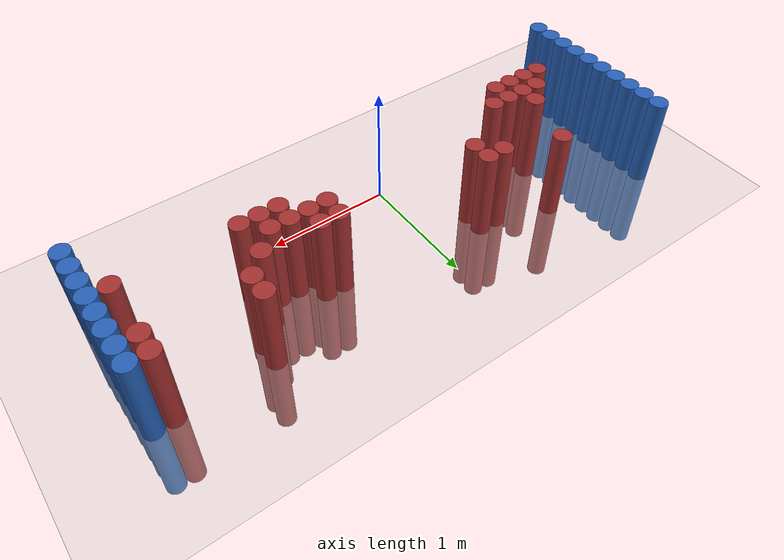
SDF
<sdf version="1.6">
 <world name="default">
  <model name="ground_plane">
   <static>1</static>
   <link name="link">
    <collision name="collision">
     <geometry><plane><normal>0 0 1</normal><size>100 100</size></plane></geometry>
     <surface><friction><ode><mu>100</mu><mu2>50</mu2></ode></friction></surface>
    </collision>
    <visual name="visual">
     <cast_shadows>0</cast_shadows>
     <geometry><plane><normal>0 0 1</normal><size>100 100</size></plane></geometry>
     <material>
      <script><uri>file://media/materials/scripts/gazebo.material</uri><name>Gazebo/Grey</name></script>
     </material>
    </visual>
   </link>
  </model>
  <model name="unit_cylinder_91">
   <static>1</static>
   <pose>-1.925000 -0.275000 0.000000 0.000000 0.000000 0.000000</pose>
   <link name="link">
    <inertial>
     <mass>1</mass>
     <inertia><ixx>0.145833</ixx><ixy>0</ixy><ixz>0</ixz><iyy>0.145833</iyy><iyz>0</iyz><izz>0.125</izz></inertia>
    </inertial>
    <collision name="collision">
     <geometry><cylinder><radius>0.075000</radius><length>1.5</length></cylinder></geometry>
    </collision>
    <visual name="visual">
     <geometry><cylinder><radius>0.075000</radius><length>1.5</length></cylinder></geometry>
     <material>
      <ambient>0.152000 0.379000 0.720000 1</ambient>
      <diffuse>0.152000 0.379000 0.720000 1</diffuse>
     </material>
     <material>
      <script><name>Gazebo/Grey</name><uri>file://media/materials/scripts/gazebo.material</uri></script>
     </material>
    </visual>
   </link>
  </model>
  <model name="unit_cylinder_92">
   <static>1</static>
   <pose>2.425000 -0.125000 0.000000 0.000000 0.000000 0.000000</pose>
   <link name="link">
    <inertial>
     <mass>1</mass>
     <inertia><ixx>0.145833</ixx><ixy>0</ixy><ixz>0</ixz><iyy>0.145833</iyy><iyz>0</iyz><izz>0.125</izz></inertia>
    </inertial>
    <collision name="collision">
     <geometry><cylinder><radius>0.075000</radius><length>1.5</length></cylinder></geometry>
    </collision>
    <visual name="visual">
     <geometry><cylinder><radius>0.075000</radius><length>1.5</length></cylinder></geometry>
     <material>
      <ambient>0.152000 0.379000 0.720000 1</ambient>
      <diffuse>0.152000 0.379000 0.720000 1</diffuse>
     </material>
     <material>
      <script><name>Gazebo/Grey</name><uri>file://media/materials/scripts/gazebo.material</uri></script>
     </material>
    </visual>
   </link>
  </model>
  <model name="unit_cylinder_93">
   <static>1</static>
   <pose>-1.925000 -0.125000 0.000000 0.000000 0.000000 0.000000</pose>
   <link name="link">
    <inertial>
     <mass>1</mass>
     <inertia><ixx>0.145833</ixx><ixy>0</ixy><ixz>0</ixz><iyy>0.145833</iyy><iyz>0</iyz><izz>0.125</izz></inertia>
    </inertial>
    <collision name="collision">
     <geometry><cylinder><radius>0.075000</radius><length>1.5</length></cylinder></geometry>
    </collision>
    <visual name="visual">
     <geometry><cylinder><radius>0.075000</radius><length>1.5</length></cylinder></geometry>
     <material>
      <ambient>0.152000 0.379000 0.720000 1</ambient>
      <diffuse>0.152000 0.379000 0.720000 1</diffuse>
     </material>
     <material>
      <script><name>Gazebo/Grey</name><uri>file://media/materials/scripts/gazebo.material</uri></script>
     </material>
    </visual>
   </link>
  </model>
  <model name="unit_cylinder_94">
   <static>1</static>
   <pose>2.425000 0.025000 0.000000 0.000000 0.000000 0.000000</pose>
   <link name="link">
    <inertial>
     <mass>1</mass>
     <inertia><ixx>0.145833</ixx><ixy>0</ixy><ixz>0</ixz><iyy>0.145833</iyy><iyz>0</iyz><izz>0.125</izz></inertia>
    </inertial>
    <collision name="collision">
     <geometry><cylinder><radius>0.075000</radius><length>1.5</length></cylinder></geometry>
    </collision>
    <visual name="visual">
     <geometry><cylinder><radius>0.075000</radius><length>1.5</length></cylinder></geometry>
     <material>
      <ambient>0.152000 0.379000 0.720000 1</ambient>
      <diffuse>0.152000 0.379000 0.720000 1</diffuse>
     </material>
     <material>
      <script><name>Gazebo/Grey</name><uri>file://media/materials/scripts/gazebo.material</uri></script>
     </material>
    </visual>
   </link>
  </model>
  <model name="unit_cylinder_95">
   <static>1</static>
   <pose>-1.925000 0.025000 0.000000 0.000000 0.000000 0.000000</pose>
   <link name="link">
    <inertial>
     <mass>1</mass>
     <inertia><ixx>0.145833</ixx><ixy>0</ixy><ixz>0</ixz><iyy>0.145833</iyy><iyz>0</iyz><izz>0.125</izz></inertia>
    </inertial>
    <collision name="collision">
     <geometry><cylinder><radius>0.075000</radius><length>1.5</length></cylinder></geometry>
    </collision>
    <visual name="visual">
     <geometry><cylinder><radius>0.075000</radius><length>1.5</length></cylinder></geometry>
     <material>
      <ambient>0.152000 0.379000 0.720000 1</ambient>
      <diffuse>0.152000 0.379000 0.720000 1</diffuse>
     </material>
     <material>
      <script><name>Gazebo/Grey</name><uri>file://media/materials/scripts/gazebo.material</uri></script>
     </material>
    </visual>
   </link>
  </model>
  <model name="unit_cylinder_96">
   <static>1</static>
   <pose>-1.925000 0.175000 0.000000 0.000000 0.000000 0.000000</pose>
   <link name="link">
    <inertial>
     <mass>1</mass>
     <inertia><ixx>0.145833</ixx><ixy>0</ixy><ixz>0</ixz><iyy>0.145833</iyy><iyz>0</iyz><izz>0.125</izz></inertia>
    </inertial>
    <collision name="collision">
     <geometry><cylinder><radius>0.075000</radius><length>1.5</length></cylinder></geometry>
    </collision>
    <visual name="visual">
     <geometry><cylinder><radius>0.075000</radius><length>1.5</length></cylinder></geometry>
     <material>
      <ambient>0.152000 0.379000 0.720000 1</ambient>
      <diffuse>0.152000 0.379000 0.720000 1</diffuse>
     </material>
     <material>
      <script><name>Gazebo/Grey</name><uri>file://media/materials/scripts/gazebo.material</uri></script>
     </material>
    </visual>
   </link>
  </model>
  <model name="unit_cylinder_97">
   <static>1</static>
   <pose>-1.925000 0.325000 0.000000 0.000000 0.000000 0.000000</pose>
   <link name="link">
    <inertial>
     <mass>1</mass>
     <inertia><ixx>0.145833</ixx><ixy>0</ixy><ixz>0</ixz><iyy>0.145833</iyy><iyz>0</iyz><izz>0.125</izz></inertia>
    </inertial>
    <collision name="collision">
     <geometry><cylinder><radius>0.075000</radius><length>1.5</length></cylinder></geometry>
    </collision>
    <visual name="visual">
     <geometry><cylinder><radius>0.075000</radius><length>1.5</length></cylinder></geometry>
     <material>
      <ambient>0.152000 0.379000 0.720000 1</ambient>
      <diffuse>0.152000 0.379000 0.720000 1</diffuse>
     </material>
     <material>
      <script><name>Gazebo/Grey</name><uri>file://media/materials/scripts/gazebo.material</uri></script>
     </material>
    </visual>
   </link>
  </model>
  <model name="unit_cylinder_98">
   <static>1</static>
   <pose>-1.925000 0.475000 0.000000 0.000000 0.000000 0.000000</pose>
   <link name="link">
    <inertial>
     <mass>1</mass>
     <inertia><ixx>0.145833</ixx><ixy>0</ixy><ixz>0</ixz><iyy>0.145833</iyy><iyz>0</iyz><izz>0.125</izz></inertia>
    </inertial>
    <collision name="collision">
     <geometry><cylinder><radius>0.075000</radius><length>1.5</length></cylinder></geometry>
    </collision>
    <visual name="visual">
     <geometry><cylinder><radius>0.075000</radius><length>1.5</length></cylinder></geometry>
     <material>
      <ambient>0.152000 0.379000 0.720000 1</ambient>
      <diffuse>0.152000 0.379000 0.720000 1</diffuse>
     </material>
     <material>
      <script><name>Gazebo/Grey</name><uri>file://media/materials/scripts/gazebo.material</uri></script>
     </material>
    </visual>
   </link>
  </model>
  <model name="unit_cylinder_99">
   <static>1</static>
   <pose>-1.925000 0.625000 0.000000 0.000000 0.000000 0.000000</pose>
   <link name="link">
    <inertial>
     <mass>1</mass>
     <inertia><ixx>0.145833</ixx><ixy>0</ixy><ixz>0</ixz><iyy>0.145833</iyy><iyz>0</iyz><izz>0.125</izz></inertia>
    </inertial>
    <collision name="collision">
     <geometry><cylinder><radius>0.075000</radius><length>1.5</length></cylinder></geometry>
    </collision>
    <visual name="visual">
     <geometry><cylinder><radius>0.075000</radius><length>1.5</length></cylinder></geometry>
     <material>
      <ambient>0.152000 0.379000 0.720000 1</ambient>
      <diffuse>0.152000 0.379000 0.720000 1</diffuse>
     </material>
     <material>
      <script><name>Gazebo/Grey</name><uri>file://media/materials/scripts/gazebo.material</uri></script>
     </material>
    </visual>
   </link>
  </model>
  <model name="unit_cylinder_100">
   <static>1</static>
   <pose>-1.925000 0.775000 0.000000 0.000000 0.000000 0.000000</pose>
   <link name="link">
    <inertial>
     <mass>1</mass>
     <inertia><ixx>0.145833</ixx><ixy>0</ixy><ixz>0</ixz><iyy>0.145833</iyy><iyz>0</iyz><izz>0.125</izz></inertia>
    </inertial>
    <collision name="collision">
     <geometry><cylinder><radius>0.075000</radius><length>1.5</length></cylinder></geometry>
    </collision>
    <visual name="visual">
     <geometry><cylinder><radius>0.075000</radius><length>1.5</length></cylinder></geometry>
     <material>
      <ambient>0.152000 0.379000 0.720000 1</ambient>
      <diffuse>0.152000 0.379000 0.720000 1</diffuse>
     </material>
     <material>
      <script><name>Gazebo/Grey</name><uri>file://media/materials/scripts/gazebo.material</uri></script>
     </material>
    </visual>
   </link>
  </model>
  <model name="unit_cylinder_101">
   <static>1</static>
   <pose>-1.925000 0.925000 0.000000 0.000000 0.000000 0.000000</pose>
   <link name="link">
    <inertial>
     <mass>1</mass>
     <inertia><ixx>0.145833</ixx><ixy>0</ixy><ixz>0</ixz><iyy>0.145833</iyy><iyz>0</iyz><izz>0.125</izz></inertia>
    </inertial>
    <collision name="collision">
     <geometry><cylinder><radius>0.075000</radius><length>1.5</length></cylinder></geometry>
    </collision>
    <visual name="visual">
     <geometry><cylinder><radius>0.075000</radius><length>1.5</length></cylinder></geometry>
     <material>
      <ambient>0.152000 0.379000 0.720000 1</ambient>
      <diffuse>0.152000 0.379000 0.720000 1</diffuse>
     </material>
     <material>
      <script><name>Gazebo/Grey</name><uri>file://media/materials/scripts/gazebo.material</uri></script>
     </material>
    </visual>
   </link>
  </model>
  <model name="unit_cylinder_102">
   <static>1</static>
   <pose>-1.925000 1.075000 0.000000 0.000000 0.000000 0.000000</pose>
   <link name="link">
    <inertial>
     <mass>1</mass>
     <inertia><ixx>0.145833</ixx><ixy>0</ixy><ixz>0</ixz><iyy>0.145833</iyy><iyz>0</iyz><izz>0.125</izz></inertia>
    </inertial>
    <collision name="collision">
     <geometry><cylinder><radius>0.075000</radius><length>1.5</length></cylinder></geometry>
    </collision>
    <visual name="visual">
     <geometry><cylinder><radius>0.075000</radius><length>1.5</length></cylinder></geometry>
     <material>
      <ambient>0.152000 0.379000 0.720000 1</ambient>
      <diffuse>0.152000 0.379000 0.720000 1</diffuse>
     </material>
     <material>
      <script><name>Gazebo/Grey</name><uri>file://media/materials/scripts/gazebo.material</uri></script>
     </material>
    </visual>
   </link>
  </model>
  <model name="unit_cylinder_139">
   <static>1</static>
   <pose>-1.475000 0.175000 0.000000 0.000000 0.000000 0.000000</pose>
   <link name="link">
    <inertial>
     <mass>1</mass>
     <inertia><ixx>0.145833</ixx><ixy>0</ixy><ixz>0</ixz><iyy>0.145833</iyy><iyz>0</iyz><izz>0.125</izz></inertia>
    </inertial>
    <collision name="collision">
     <geometry><cylinder><radius>0.075000</radius><length>1.5</length></cylinder></geometry>
    </collision>
    <visual name="visual">
     <geometry><cylinder><radius>0.075000</radius><length>1.5</length></cylinder></geometry>
     <material>
      <ambient>0.648000 0.192000 0.192000 1</ambient>
      <diffuse>0.648000 0.192000 0.192000 1</diffuse>
     </material>
     <material>
      <script><name>Gazebo/Grey</name><uri>file://media/materials/scripts/gazebo.material</uri></script>
     </material>
    </visual>
   </link>
  </model>
  <model name="unit_cylinder_142">
   <static>1</static>
   <pose>-1.325000 0.175000 0.000000 0.000000 0.000000 0.000000</pose>
   <link name="link">
    <inertial>
     <mass>1</mass>
     <inertia><ixx>0.145833</ixx><ixy>0</ixy><ixz>0</ixz><iyy>0.145833</iyy><iyz>0</iyz><izz>0.125</izz></inertia>
    </inertial>
    <collision name="collision">
     <geometry><cylinder><radius>0.075000</radius><length>1.5</length></cylinder></geometry>
    </collision>
    <visual name="visual">
     <geometry><cylinder><radius>0.075000</radius><length>1.5</length></cylinder></geometry>
     <material>
      <ambient>0.648000 0.192000 0.192000 1</ambient>
      <diffuse>0.648000 0.192000 0.192000 1</diffuse>
     </material>
     <material>
      <script><name>Gazebo/Grey</name><uri>file://media/materials/scripts/gazebo.material</uri></script>
     </material>
    </visual>
   </link>
  </model>
  <model name="unit_cylinder_143">
   <static>1</static>
   <pose>-1.325000 0.325000 0.000000 0.000000 0.000000 0.000000</pose>
   <link name="link">
    <inertial>
     <mass>1</mass>
     <inertia><ixx>0.145833</ixx><ixy>0</ixy><ixz>0</ixz><iyy>0.145833</iyy><iyz>0</iyz><izz>0.125</izz></inertia>
    </inertial>
    <collision name="collision">
     <geometry><cylinder><radius>0.075000</radius><length>1.5</length></cylinder></geometry>
    </collision>
    <visual name="visual">
     <geometry><cylinder><radius>0.075000</radius><length>1.5</length></cylinder></geometry>
     <material>
      <ambient>0.648000 0.192000 0.192000 1</ambient>
      <diffuse>0.648000 0.192000 0.192000 1</diffuse>
     </material>
     <material>
      <script><name>Gazebo/Grey</name><uri>file://media/materials/scripts/gazebo.material</uri></script>
     </material>
    </visual>
   </link>
  </model>
  <model name="unit_cylinder_146">
   <static>1</static>
   <pose>-1.175000 0.175000 0.000000 0.000000 0.000000 0.000000</pose>
   <link name="link">
    <inertial>
     <mass>1</mass>
     <inertia><ixx>0.145833</ixx><ixy>0</ixy><ixz>0</ixz><iyy>0.145833</iyy><iyz>0</iyz><izz>0.125</izz></inertia>
    </inertial>
    <collision name="collision">
     <geometry><cylinder><radius>0.075000</radius><length>1.5</length></cylinder></geometry>
    </collision>
    <visual name="visual">
     <geometry><cylinder><radius>0.075000</radius><length>1.5</length></cylinder></geometry>
     <material>
      <ambient>0.648000 0.192000 0.192000 1</ambient>
      <diffuse>0.648000 0.192000 0.192000 1</diffuse>
     </material>
     <material>
      <script><name>Gazebo/Grey</name><uri>file://media/materials/scripts/gazebo.material</uri></script>
     </material>
    </visual>
   </link>
  </model>
  <model name="unit_cylinder_147">
   <static>1</static>
   <pose>-1.175000 0.325000 0.000000 0.000000 0.000000 0.000000</pose>
   <link name="link">
    <inertial>
     <mass>1</mass>
     <inertia><ixx>0.145833</ixx><ixy>0</ixy><ixz>0</ixz><iyy>0.145833</iyy><iyz>0</iyz><izz>0.125</izz></inertia>
    </inertial>
    <collision name="collision">
     <geometry><cylinder><radius>0.075000</radius><length>1.5</length></cylinder></geometry>
    </collision>
    <visual name="visual">
     <geometry><cylinder><radius>0.075000</radius><length>1.5</length></cylinder></geometry>
     <material>
      <ambient>0.648000 0.192000 0.192000 1</ambient>
      <diffuse>0.648000 0.192000 0.192000 1</diffuse>
     </material>
     <material>
      <script><name>Gazebo/Grey</name><uri>file://media/materials/scripts/gazebo.material</uri></script>
     </material>
    </visual>
   </link>
  </model>
  <model name="unit_cylinder_148">
   <static>1</static>
   <pose>-1.175000 0.475000 0.000000 0.000000 0.000000 0.000000</pose>
   <link name="link">
    <inertial>
     <mass>1</mass>
     <inertia><ixx>0.145833</ixx><ixy>0</ixy><ixz>0</ixz><iyy>0.145833</iyy><iyz>0</iyz><izz>0.125</izz></inertia>
    </inertial>
    <collision name="collision">
     <geometry><cylinder><radius>0.075000</radius><length>1.5</length></cylinder></geometry>
    </collision>
    <visual name="visual">
     <geometry><cylinder><radius>0.075000</radius><length>1.5</length></cylinder></geometry>
     <material>
      <ambient>0.648000 0.192000 0.192000 1</ambient>
      <diffuse>0.648000 0.192000 0.192000 1</diffuse>
     </material>
     <material>
      <script><name>Gazebo/Grey</name><uri>file://media/materials/scripts/gazebo.material</uri></script>
     </material>
    </visual>
   </link>
  </model>
  <model name="unit_cylinder_152">
   <static>1</static>
   <pose>-1.025000 0.175000 0.000000 0.000000 0.000000 0.000000</pose>
   <link name="link">
    <inertial>
     <mass>1</mass>
     <inertia><ixx>0.145833</ixx><ixy>0</ixy><ixz>0</ixz><iyy>0.145833</iyy><iyz>0</iyz><izz>0.125</izz></inertia>
    </inertial>
    <collision name="collision">
     <geometry><cylinder><radius>0.075000</radius><length>1.5</length></cylinder></geometry>
    </collision>
    <visual name="visual">
     <geometry><cylinder><radius>0.075000</radius><length>1.5</length></cylinder></geometry>
     <material>
      <ambient>0.648000 0.192000 0.192000 1</ambient>
      <diffuse>0.648000 0.192000 0.192000 1</diffuse>
     </material>
     <material>
      <script><name>Gazebo/Grey</name><uri>file://media/materials/scripts/gazebo.material</uri></script>
     </material>
    </visual>
   </link>
  </model>
  <model name="unit_cylinder_153">
   <static>1</static>
   <pose>-1.025000 0.325000 0.000000 0.000000 0.000000 0.000000</pose>
   <link name="link">
    <inertial>
     <mass>1</mass>
     <inertia><ixx>0.145833</ixx><ixy>0</ixy><ixz>0</ixz><iyy>0.145833</iyy><iyz>0</iyz><izz>0.125</izz></inertia>
    </inertial>
    <collision name="collision">
     <geometry><cylinder><radius>0.075000</radius><length>1.5</length></cylinder></geometry>
    </collision>
    <visual name="visual">
     <geometry><cylinder><radius>0.075000</radius><length>1.5</length></cylinder></geometry>
     <material>
      <ambient>0.648000 0.192000 0.192000 1</ambient>
      <diffuse>0.648000 0.192000 0.192000 1</diffuse>
     </material>
     <material>
      <script><name>Gazebo/Grey</name><uri>file://media/materials/scripts/gazebo.material</uri></script>
     </material>
    </visual>
   </link>
  </model>
  <model name="unit_cylinder_154">
   <static>1</static>
   <pose>-1.025000 0.925000 0.000000 0.000000 0.000000 0.000000</pose>
   <link name="link">
    <inertial>
     <mass>1</mass>
     <inertia><ixx>0.145833</ixx><ixy>0</ixy><ixz>0</ixz><iyy>0.145833</iyy><iyz>0</iyz><izz>0.125</izz></inertia>
    </inertial>
    <collision name="collision">
     <geometry><cylinder><radius>0.075000</radius><length>1.5</length></cylinder></geometry>
    </collision>
    <visual name="visual">
     <geometry><cylinder><radius>0.075000</radius><length>1.5</length></cylinder></geometry>
     <material>
      <ambient>0.648000 0.192000 0.192000 1</ambient>
      <diffuse>0.648000 0.192000 0.192000 1</diffuse>
     </material>
     <material>
      <script><name>Gazebo/Grey</name><uri>file://media/materials/scripts/gazebo.material</uri></script>
     </material>
    </visual>
   </link>
  </model>
  <model name="unit_cylinder_160">
   <static>1</static>
   <pose>-0.875000 0.325000 0.000000 0.000000 0.000000 0.000000</pose>
   <link name="link">
    <inertial>
     <mass>1</mass>
     <inertia><ixx>0.145833</ixx><ixy>0</ixy><ixz>0</ixz><iyy>0.145833</iyy><iyz>0</iyz><izz>0.125</izz></inertia>
    </inertial>
    <collision name="collision">
     <geometry><cylinder><radius>0.075000</radius><length>1.5</length></cylinder></geometry>
    </collision>
    <visual name="visual">
     <geometry><cylinder><radius>0.075000</radius><length>1.5</length></cylinder></geometry>
     <material>
      <ambient>0.648000 0.192000 0.192000 1</ambient>
      <diffuse>0.648000 0.192000 0.192000 1</diffuse>
     </material>
     <material>
      <script><name>Gazebo/Grey</name><uri>file://media/materials/scripts/gazebo.material</uri></script>
     </material>
    </visual>
   </link>
  </model>
  <model name="unit_cylinder_170">
   <static>1</static>
   <pose>-0.575000 0.775000 0.000000 0.000000 0.000000 0.000000</pose>
   <link name="link">
    <inertial>
     <mass>1</mass>
     <inertia><ixx>0.145833</ixx><ixy>0</ixy><ixz>0</ixz><iyy>0.145833</iyy><iyz>0</iyz><izz>0.125</izz></inertia>
    </inertial>
    <collision name="collision">
     <geometry><cylinder><radius>0.075000</radius><length>1.5</length></cylinder></geometry>
    </collision>
    <visual name="visual">
     <geometry><cylinder><radius>0.075000</radius><length>1.5</length></cylinder></geometry>
     <material>
      <ambient>0.648000 0.192000 0.192000 1</ambient>
      <diffuse>0.648000 0.192000 0.192000 1</diffuse>
     </material>
     <material>
      <script><name>Gazebo/Grey</name><uri>file://media/materials/scripts/gazebo.material</uri></script>
     </material>
    </visual>
   </link>
  </model>
  <model name="unit_cylinder_173">
   <static>1</static>
   <pose>-0.425000 0.625000 0.000000 0.000000 0.000000 0.000000</pose>
   <link name="link">
    <inertial>
     <mass>1</mass>
     <inertia><ixx>0.145833</ixx><ixy>0</ixy><ixz>0</ixz><iyy>0.145833</iyy><iyz>0</iyz><izz>0.125</izz></inertia>
    </inertial>
    <collision name="collision">
     <geometry><cylinder><radius>0.075000</radius><length>1.5</length></cylinder></geometry>
    </collision>
    <visual name="visual">
     <geometry><cylinder><radius>0.075000</radius><length>1.5</length></cylinder></geometry>
     <material>
      <ambient>0.648000 0.192000 0.192000 1</ambient>
      <diffuse>0.648000 0.192000 0.192000 1</diffuse>
     </material>
     <material>
      <script><name>Gazebo/Grey</name><uri>file://media/materials/scripts/gazebo.material</uri></script>
     </material>
    </visual>
   </link>
  </model>
  <model name="unit_cylinder_174">
   <static>1</static>
   <pose>-0.425000 0.775000 0.000000 0.000000 0.000000 0.000000</pose>
   <link name="link">
    <inertial>
     <mass>1</mass>
     <inertia><ixx>0.145833</ixx><ixy>0</ixy><ixz>0</ixz><iyy>0.145833</iyy><iyz>0</iyz><izz>0.125</izz></inertia>
    </inertial>
    <collision name="collision">
     <geometry><cylinder><radius>0.075000</radius><length>1.5</length></cylinder></geometry>
    </collision>
    <visual name="visual">
     <geometry><cylinder><radius>0.075000</radius><length>1.5</length></cylinder></geometry>
     <material>
      <ambient>0.648000 0.192000 0.192000 1</ambient>
      <diffuse>0.648000 0.192000 0.192000 1</diffuse>
     </material>
     <material>
      <script><name>Gazebo/Grey</name><uri>file://media/materials/scripts/gazebo.material</uri></script>
     </material>
    </visual>
   </link>
  </model>
  <model name="unit_cylinder_182">
   <static>1</static>
   <pose>0.775000 0.475000 0.000000 0.000000 0.000000 0.000000</pose>
   <link name="link">
    <inertial>
     <mass>1</mass>
     <inertia><ixx>0.145833</ixx><ixy>0</ixy><ixz>0</ixz><iyy>0.145833</iyy><iyz>0</iyz><izz>0.125</izz></inertia>
    </inertial>
    <collision name="collision">
     <geometry><cylinder><radius>0.075000</radius><length>1.5</length></cylinder></geometry>
    </collision>
    <visual name="visual">
     <geometry><cylinder><radius>0.075000</radius><length>1.5</length></cylinder></geometry>
     <material>
      <ambient>0.648000 0.192000 0.192000 1</ambient>
      <diffuse>0.648000 0.192000 0.192000 1</diffuse>
     </material>
     <material>
      <script><name>Gazebo/Grey</name><uri>file://media/materials/scripts/gazebo.material</uri></script>
     </material>
    </visual>
   </link>
  </model>
  <model name="unit_cylinder_183">
   <static>1</static>
   <pose>0.775000 0.625000 0.000000 0.000000 0.000000 0.000000</pose>
   <link name="link">
    <inertial>
     <mass>1</mass>
     <inertia><ixx>0.145833</ixx><ixy>0</ixy><ixz>0</ixz><iyy>0.145833</iyy><iyz>0</iyz><izz>0.125</izz></inertia>
    </inertial>
    <collision name="collision">
     <geometry><cylinder><radius>0.075000</radius><length>1.5</length></cylinder></geometry>
    </collision>
    <visual name="visual">
     <geometry><cylinder><radius>0.075000</radius><length>1.5</length></cylinder></geometry>
     <material>
      <ambient>0.648000 0.192000 0.192000 1</ambient>
      <diffuse>0.648000 0.192000 0.192000 1</diffuse>
     </material>
     <material>
      <script><name>Gazebo/Grey</name><uri>file://media/materials/scripts/gazebo.material</uri></script>
     </material>
    </visual>
   </link>
  </model>
  <model name="unit_cylinder_187">
   <static>1</static>
   <pose>0.925000 0.475000 0.000000 0.000000 0.000000 0.000000</pose>
   <link name="link">
    <inertial>
     <mass>1</mass>
     <inertia><ixx>0.145833</ixx><ixy>0</ixy><ixz>0</ixz><iyy>0.145833</iyy><iyz>0</iyz><izz>0.125</izz></inertia>
    </inertial>
    <collision name="collision">
     <geometry><cylinder><radius>0.075000</radius><length>1.5</length></cylinder></geometry>
    </collision>
    <visual name="visual">
     <geometry><cylinder><radius>0.075000</radius><length>1.5</length></cylinder></geometry>
     <material>
      <ambient>0.648000 0.192000 0.192000 1</ambient>
      <diffuse>0.648000 0.192000 0.192000 1</diffuse>
     </material>
     <material>
      <script><name>Gazebo/Grey</name><uri>file://media/materials/scripts/gazebo.material</uri></script>
     </material>
    </visual>
   </link>
  </model>
  <model name="unit_cylinder_188">
   <static>1</static>
   <pose>0.925000 0.625000 0.000000 0.000000 0.000000 0.000000</pose>
   <link name="link">
    <inertial>
     <mass>1</mass>
     <inertia><ixx>0.145833</ixx><ixy>0</ixy><ixz>0</ixz><iyy>0.145833</iyy><iyz>0</iyz><izz>0.125</izz></inertia>
    </inertial>
    <collision name="collision">
     <geometry><cylinder><radius>0.075000</radius><length>1.5</length></cylinder></geometry>
    </collision>
    <visual name="visual">
     <geometry><cylinder><radius>0.075000</radius><length>1.5</length></cylinder></geometry>
     <material>
      <ambient>0.648000 0.192000 0.192000 1</ambient>
      <diffuse>0.648000 0.192000 0.192000 1</diffuse>
     </material>
     <material>
      <script><name>Gazebo/Grey</name><uri>file://media/materials/scripts/gazebo.material</uri></script>
     </material>
    </visual>
   </link>
  </model>
  <model name="unit_cylinder_189">
   <static>1</static>
   <pose>1.075000 0.325000 0.000000 0.000000 0.000000 0.000000</pose>
   <link name="link">
    <inertial>
     <mass>1</mass>
     <inertia><ixx>0.145833</ixx><ixy>0</ixy><ixz>0</ixz><iyy>0.145833</iyy><iyz>0</iyz><izz>0.125</izz></inertia>
    </inertial>
    <collision name="collision">
     <geometry><cylinder><radius>0.075000</radius><length>1.5</length></cylinder></geometry>
    </collision>
    <visual name="visual">
     <geometry><cylinder><radius>0.075000</radius><length>1.5</length></cylinder></geometry>
     <material>
      <ambient>0.648000 0.192000 0.192000 1</ambient>
      <diffuse>0.648000 0.192000 0.192000 1</diffuse>
     </material>
     <material>
      <script><name>Gazebo/Grey</name><uri>file://media/materials/scripts/gazebo.material</uri></script>
     </material>
    </visual>
   </link>
  </model>
  <model name="unit_cylinder_190">
   <static>1</static>
   <pose>1.075000 0.475000 0.000000 0.000000 0.000000 0.000000</pose>
   <link name="link">
    <inertial>
     <mass>1</mass>
     <inertia><ixx>0.145833</ixx><ixy>0</ixy><ixz>0</ixz><iyy>0.145833</iyy><iyz>0</iyz><izz>0.125</izz></inertia>
    </inertial>
    <collision name="collision">
     <geometry><cylinder><radius>0.075000</radius><length>1.5</length></cylinder></geometry>
    </collision>
    <visual name="visual">
     <geometry><cylinder><radius>0.075000</radius><length>1.5</length></cylinder></geometry>
     <material>
      <ambient>0.648000 0.192000 0.192000 1</ambient>
      <diffuse>0.648000 0.192000 0.192000 1</diffuse>
     </material>
     <material>
      <script><name>Gazebo/Grey</name><uri>file://media/materials/scripts/gazebo.material</uri></script>
     </material>
    </visual>
   </link>
  </model>
  <model name="unit_cylinder_191">
   <static>1</static>
   <pose>1.225000 0.325000 0.000000 0.000000 0.000000 0.000000</pose>
   <link name="link">
    <inertial>
     <mass>1</mass>
     <inertia><ixx>0.145833</ixx><ixy>0</ixy><ixz>0</ixz><iyy>0.145833</iyy><iyz>0</iyz><izz>0.125</izz></inertia>
    </inertial>
    <collision name="collision">
     <geometry><cylinder><radius>0.075000</radius><length>1.5</length></cylinder></geometry>
    </collision>
    <visual name="visual">
     <geometry><cylinder><radius>0.075000</radius><length>1.5</length></cylinder></geometry>
     <material>
      <ambient>0.648000 0.192000 0.192000 1</ambient>
      <diffuse>0.648000 0.192000 0.192000 1</diffuse>
     </material>
     <material>
      <script><name>Gazebo/Grey</name><uri>file://media/materials/scripts/gazebo.material</uri></script>
     </material>
    </visual>
   </link>
  </model>
  <model name="unit_cylinder_192">
   <static>1</static>
   <pose>1.225000 0.475000 0.000000 0.000000 0.000000 0.000000</pose>
   <link name="link">
    <inertial>
     <mass>1</mass>
     <inertia><ixx>0.145833</ixx><ixy>0</ixy><ixz>0</ixz><iyy>0.145833</iyy><iyz>0</iyz><izz>0.125</izz></inertia>
    </inertial>
    <collision name="collision">
     <geometry><cylinder><radius>0.075000</radius><length>1.5</length></cylinder></geometry>
    </collision>
    <visual name="visual">
     <geometry><cylinder><radius>0.075000</radius><length>1.5</length></cylinder></geometry>
     <material>
      <ambient>0.648000 0.192000 0.192000 1</ambient>
      <diffuse>0.648000 0.192000 0.192000 1</diffuse>
     </material>
     <material>
      <script><name>Gazebo/Grey</name><uri>file://media/materials/scripts/gazebo.material</uri></script>
     </material>
    </visual>
   </link>
  </model>
  <model name="unit_cylinder_195">
   <static>1</static>
   <pose>1.375000 0.325000 0.000000 0.000000 0.000000 0.000000</pose>
   <link name="link">
    <inertial>
     <mass>1</mass>
     <inertia><ixx>0.145833</ixx><ixy>0</ixy><ixz>0</ixz><iyy>0.145833</iyy><iyz>0</iyz><izz>0.125</izz></inertia>
    </inertial>
    <collision name="collision">
     <geometry><cylinder><radius>0.075000</radius><length>1.5</length></cylinder></geometry>
    </collision>
    <visual name="visual">
     <geometry><cylinder><radius>0.075000</radius><length>1.5</length></cylinder></geometry>
     <material>
      <ambient>0.648000 0.192000 0.192000 1</ambient>
      <diffuse>0.648000 0.192000 0.192000 1</diffuse>
     </material>
     <material>
      <script><name>Gazebo/Grey</name><uri>file://media/materials/scripts/gazebo.material</uri></script>
     </material>
    </visual>
   </link>
  </model>
  <model name="unit_cylinder_196">
   <static>1</static>
   <pose>1.375000 0.625000 0.000000 0.000000 0.000000 0.000000</pose>
   <link name="link">
    <inertial>
     <mass>1</mass>
     <inertia><ixx>0.145833</ixx><ixy>0</ixy><ixz>0</ixz><iyy>0.145833</iyy><iyz>0</iyz><izz>0.125</izz></inertia>
    </inertial>
    <collision name="collision">
     <geometry><cylinder><radius>0.075000</radius><length>1.5</length></cylinder></geometry>
    </collision>
    <visual name="visual">
     <geometry><cylinder><radius>0.075000</radius><length>1.5</length></cylinder></geometry>
     <material>
      <ambient>0.648000 0.192000 0.192000 1</ambient>
      <diffuse>0.648000 0.192000 0.192000 1</diffuse>
     </material>
     <material>
      <script><name>Gazebo/Grey</name><uri>file://media/materials/scripts/gazebo.material</uri></script>
     </material>
    </visual>
   </link>
  </model>
  <model name="unit_cylinder_199">
   <static>1</static>
   <pose>1.525000 0.775000 0.000000 0.000000 0.000000 0.000000</pose>
   <link name="link">
    <inertial>
     <mass>1</mass>
     <inertia><ixx>0.145833</ixx><ixy>0</ixy><ixz>0</ixz><iyy>0.145833</iyy><iyz>0</iyz><izz>0.125</izz></inertia>
    </inertial>
    <collision name="collision">
     <geometry><cylinder><radius>0.075000</radius><length>1.5</length></cylinder></geometry>
    </collision>
    <visual name="visual">
     <geometry><cylinder><radius>0.075000</radius><length>1.5</length></cylinder></geometry>
     <material>
      <ambient>0.648000 0.192000 0.192000 1</ambient>
      <diffuse>0.648000 0.192000 0.192000 1</diffuse>
     </material>
     <material>
      <script><name>Gazebo/Grey</name><uri>file://media/materials/scripts/gazebo.material</uri></script>
     </material>
    </visual>
   </link>
  </model>
  <model name="unit_cylinder_200">
   <static>1</static>
   <pose>1.525000 0.925000 0.000000 0.000000 0.000000 0.000000</pose>
   <link name="link">
    <inertial>
     <mass>1</mass>
     <inertia><ixx>0.145833</ixx><ixy>0</ixy><ixz>0</ixz><iyy>0.145833</iyy><iyz>0</iyz><izz>0.125</izz></inertia>
    </inertial>
    <collision name="collision">
     <geometry><cylinder><radius>0.075000</radius><length>1.5</length></cylinder></geometry>
    </collision>
    <visual name="visual">
     <geometry><cylinder><radius>0.075000</radius><length>1.5</length></cylinder></geometry>
     <material>
      <ambient>0.648000 0.192000 0.192000 1</ambient>
      <diffuse>0.648000 0.192000 0.192000 1</diffuse>
     </material>
     <material>
      <script><name>Gazebo/Grey</name><uri>file://media/materials/scripts/gazebo.material</uri></script>
     </material>
    </visual>
   </link>
  </model>
  <model name="unit_cylinder_229">
   <static>1</static>
   <pose>2.275000 0.325000 0.000000 0.000000 0.000000 0.000000</pose>
   <link name="link">
    <inertial>
     <mass>1</mass>
     <inertia><ixx>0.145833</ixx><ixy>0</ixy><ixz>0</ixz><iyy>0.145833</iyy><iyz>0</iyz><izz>0.125</izz></inertia>
    </inertial>
    <collision name="collision">
     <geometry><cylinder><radius>0.075000</radius><length>1.5</length></cylinder></geometry>
    </collision>
    <visual name="visual">
     <geometry><cylinder><radius>0.075000</radius><length>1.5</length></cylinder></geometry>
     <material>
      <ambient>0.648000 0.192000 0.192000 1</ambient>
      <diffuse>0.648000 0.192000 0.192000 1</diffuse>
     </material>
     <material>
      <script><name>Gazebo/Grey</name><uri>file://media/materials/scripts/gazebo.material</uri></script>
     </material>
    </visual>
   </link>
  </model>
  <model name="unit_cylinder_230">
   <static>1</static>
   <pose>2.275000 0.775000 0.000000 0.000000 0.000000 0.000000</pose>
   <link name="link">
    <inertial>
     <mass>1</mass>
     <inertia><ixx>0.145833</ixx><ixy>0</ixy><ixz>0</ixz><iyy>0.145833</iyy><iyz>0</iyz><izz>0.125</izz></inertia>
    </inertial>
    <collision name="collision">
     <geometry><cylinder><radius>0.075000</radius><length>1.5</length></cylinder></geometry>
    </collision>
    <visual name="visual">
     <geometry><cylinder><radius>0.075000</radius><length>1.5</length></cylinder></geometry>
     <material>
      <ambient>0.648000 0.192000 0.192000 1</ambient>
      <diffuse>0.648000 0.192000 0.192000 1</diffuse>
     </material>
     <material>
      <script><name>Gazebo/Grey</name><uri>file://media/materials/scripts/gazebo.material</uri></script>
     </material>
    </visual>
   </link>
  </model>
  <model name="unit_cylinder_231">
   <static>1</static>
   <pose>2.275000 0.925000 0.000000 0.000000 0.000000 0.000000</pose>
   <link name="link">
    <inertial>
     <mass>1</mass>
     <inertia><ixx>0.145833</ixx><ixy>0</ixy><ixz>0</ixz><iyy>0.145833</iyy><iyz>0</iyz><izz>0.125</izz></inertia>
    </inertial>
    <collision name="collision">
     <geometry><cylinder><radius>0.075000</radius><length>1.5</length></cylinder></geometry>
    </collision>
    <visual name="visual">
     <geometry><cylinder><radius>0.075000</radius><length>1.5</length></cylinder></geometry>
     <material>
      <ambient>0.648000 0.192000 0.192000 1</ambient>
      <diffuse>0.648000 0.192000 0.192000 1</diffuse>
     </material>
     <material>
      <script><name>Gazebo/Grey</name><uri>file://media/materials/scripts/gazebo.material</uri></script>
     </material>
    </visual>
   </link>
  </model>
  <model name="unit_cylinder_243">
   <static>1</static>
   <pose>2.425000 0.175000 0.000000 0.000000 0.000000 0.000000</pose>
   <link name="link">
    <inertial>
     <mass>1</mass>
     <inertia><ixx>0.145833</ixx><ixy>0</ixy><ixz>0</ixz><iyy>0.145833</iyy><iyz>0</iyz><izz>0.125</izz></inertia>
    </inertial>
    <collision name="collision">
     <geometry><cylinder><radius>0.075000</radius><length>1.5</length></cylinder></geometry>
    </collision>
    <visual name="visual">
     <geometry><cylinder><radius>0.075000</radius><length>1.5</length></cylinder></geometry>
     <material>
      <ambient>0.152000 0.379000 0.720000 1</ambient>
      <diffuse>0.152000 0.379000 0.720000 1</diffuse>
     </material>
     <material>
      <script><name>Gazebo/Grey</name><uri>file://media/materials/scripts/gazebo.material</uri></script>
     </material>
    </visual>
   </link>
  </model>
  <model name="unit_cylinder_244">
   <static>1</static>
   <pose>2.425000 0.325000 0.000000 0.000000 0.000000 0.000000</pose>
   <link name="link">
    <inertial>
     <mass>1</mass>
     <inertia><ixx>0.145833</ixx><ixy>0</ixy><ixz>0</ixz><iyy>0.145833</iyy><iyz>0</iyz><izz>0.125</izz></inertia>
    </inertial>
    <collision name="collision">
     <geometry><cylinder><radius>0.075000</radius><length>1.5</length></cylinder></geometry>
    </collision>
    <visual name="visual">
     <geometry><cylinder><radius>0.075000</radius><length>1.5</length></cylinder></geometry>
     <material>
      <ambient>0.152000 0.379000 0.720000 1</ambient>
      <diffuse>0.152000 0.379000 0.720000 1</diffuse>
     </material>
     <material>
      <script><name>Gazebo/Grey</name><uri>file://media/materials/scripts/gazebo.material</uri></script>
     </material>
    </visual>
   </link>
  </model>
  <model name="unit_cylinder_245">
   <static>1</static>
   <pose>2.425000 0.475000 0.000000 0.000000 0.000000 0.000000</pose>
   <link name="link">
    <inertial>
     <mass>1</mass>
     <inertia><ixx>0.145833</ixx><ixy>0</ixy><ixz>0</ixz><iyy>0.145833</iyy><iyz>0</iyz><izz>0.125</izz></inertia>
    </inertial>
    <collision name="collision">
     <geometry><cylinder><radius>0.075000</radius><length>1.5</length></cylinder></geometry>
    </collision>
    <visual name="visual">
     <geometry><cylinder><radius>0.075000</radius><length>1.5</length></cylinder></geometry>
     <material>
      <ambient>0.152000 0.379000 0.720000 1</ambient>
      <diffuse>0.152000 0.379000 0.720000 1</diffuse>
     </material>
     <material>
      <script><name>Gazebo/Grey</name><uri>file://media/materials/scripts/gazebo.material</uri></script>
     </material>
    </visual>
   </link>
  </model>
  <model name="unit_cylinder_246">
   <static>1</static>
   <pose>2.425000 0.625000 0.000000 0.000000 0.000000 0.000000</pose>
   <link name="link">
    <inertial>
     <mass>1</mass>
     <inertia><ixx>0.145833</ixx><ixy>0</ixy><ixz>0</ixz><iyy>0.145833</iyy><iyz>0</iyz><izz>0.125</izz></inertia>
    </inertial>
    <collision name="collision">
     <geometry><cylinder><radius>0.075000</radius><length>1.5</length></cylinder></geometry>
    </collision>
    <visual name="visual">
     <geometry><cylinder><radius>0.075000</radius><length>1.5</length></cylinder></geometry>
     <material>
      <ambient>0.152000 0.379000 0.720000 1</ambient>
      <diffuse>0.152000 0.379000 0.720000 1</diffuse>
     </material>
     <material>
      <script><name>Gazebo/Grey</name><uri>file://media/materials/scripts/gazebo.material</uri></script>
     </material>
    </visual>
   </link>
  </model>
  <model name="unit_cylinder_247">
   <static>1</static>
   <pose>2.425000 0.775000 0.000000 0.000000 0.000000 0.000000</pose>
   <link name="link">
    <inertial>
     <mass>1</mass>
     <inertia><ixx>0.145833</ixx><ixy>0</ixy><ixz>0</ixz><iyy>0.145833</iyy><iyz>0</iyz><izz>0.125</izz></inertia>
    </inertial>
    <collision name="collision">
     <geometry><cylinder><radius>0.075000</radius><length>1.5</length></cylinder></geometry>
    </collision>
    <visual name="visual">
     <geometry><cylinder><radius>0.075000</radius><length>1.5</length></cylinder></geometry>
     <material>
      <ambient>0.152000 0.379000 0.720000 1</ambient>
      <diffuse>0.152000 0.379000 0.720000 1</diffuse>
     </material>
     <material>
      <script><name>Gazebo/Grey</name><uri>file://media/materials/scripts/gazebo.material</uri></script>
     </material>
    </visual>
   </link>
  </model>
  <model name="unit_cylinder_248">
   <static>1</static>
   <pose>2.425000 0.925000 0.000000 0.000000 0.000000 0.000000</pose>
   <link name="link">
    <inertial>
     <mass>1</mass>
     <inertia><ixx>0.145833</ixx><ixy>0</ixy><ixz>0</ixz><iyy>0.145833</iyy><iyz>0</iyz><izz>0.125</izz></inertia>
    </inertial>
    <collision name="collision">
     <geometry><cylinder><radius>0.075000</radius><length>1.5</length></cylinder></geometry>
    </collision>
    <visual name="visual">
     <geometry><cylinder><radius>0.075000</radius><length>1.5</length></cylinder></geometry>
     <material>
      <ambient>0.152000 0.379000 0.720000 1</ambient>
      <diffuse>0.152000 0.379000 0.720000 1</diffuse>
     </material>
     <material>
      <script><name>Gazebo/Grey</name><uri>file://media/materials/scripts/gazebo.material</uri></script>
     </material>
    </visual>
   </link>
  </model>
 </world>
</sdf>
